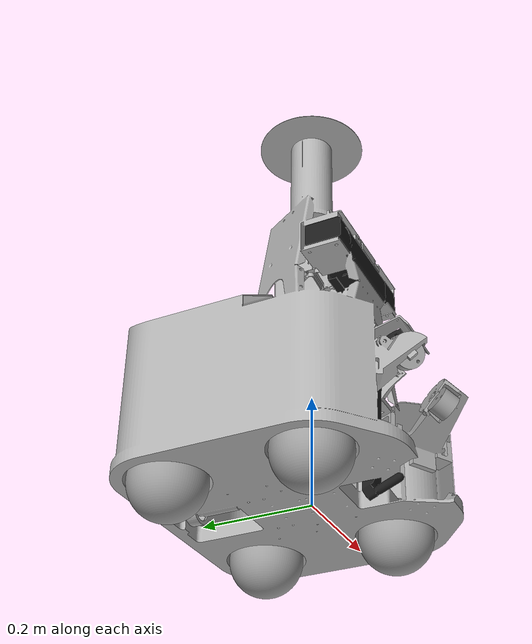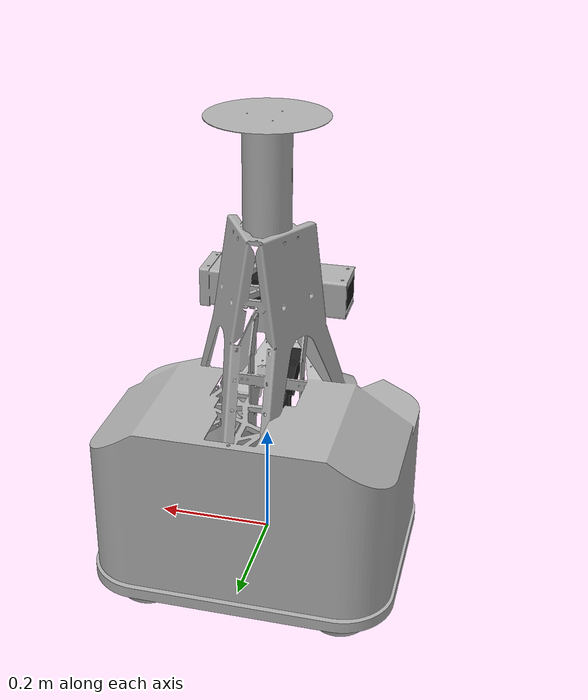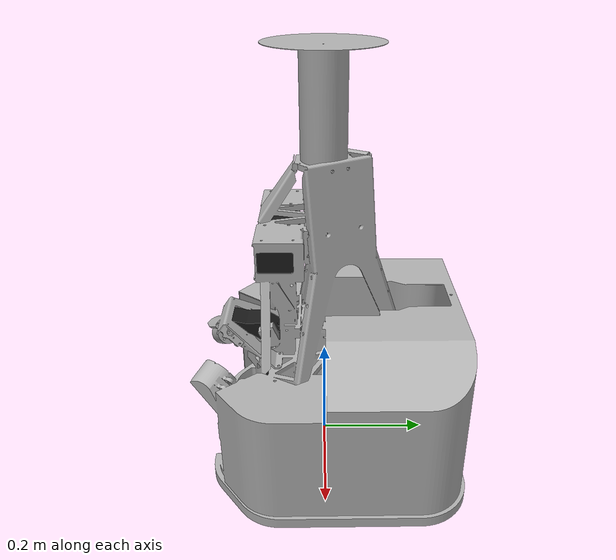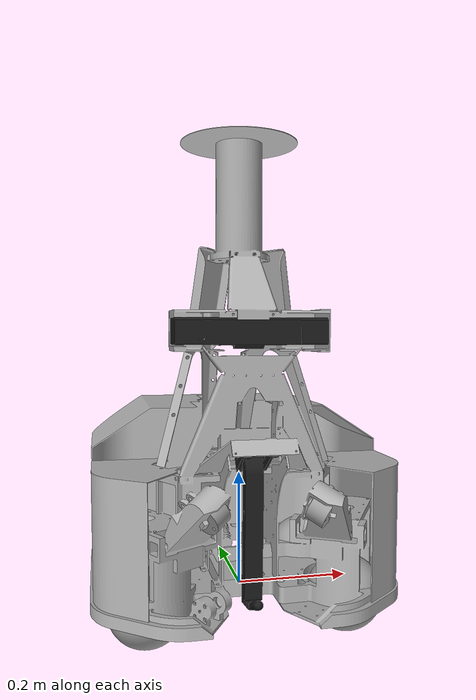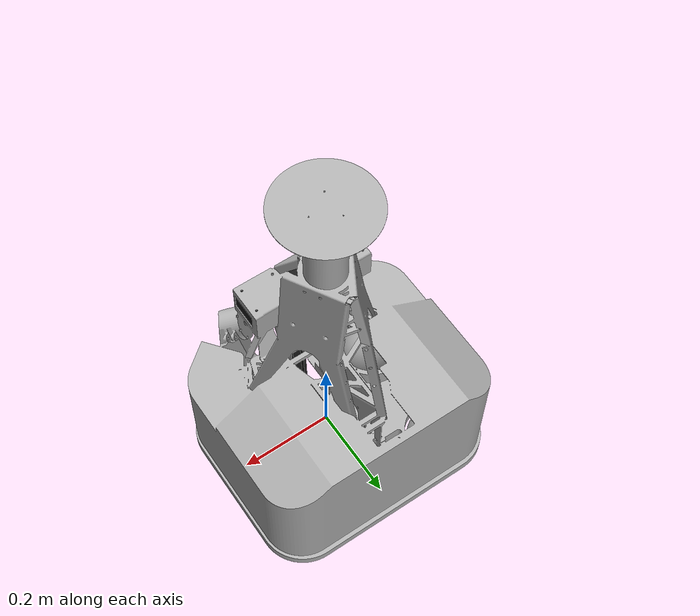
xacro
<?xml version="1.0" ?>
<robot name="rcup_urdf_sph" xmlns:xacro="http://www.ros.org/wiki/xacro">

<xacro:include filename="$(find rcup_urdf_sph_description)/urdf/materials.xacro" />
<xacro:include filename="$(find rcup_urdf_sph_description)/urdf/rcup_urdf_sph.trans" />
<link name="base_link">
  <inertial>
    <origin xyz="-0.0019404383294111213 0.010953637895530069 0.15773361972906869" rpy="0 0 0"/>
    <mass value="38.737058812916764"/>
    <inertia ixx="1.973285" iyy="2.130912" izz="1.568855" ixy="-0.008577" iyz="0.075018" ixz="-0.007662"/>
  </inertial>
  <visual>
    <origin xyz="0 0 0" rpy="0 0 0"/>
    <geometry>
      <mesh filename="package://rcup_urdf_sph_description/meshes/base_link.stl" scale="0.001 0.001 0.001"/>
    </geometry>
    <material name="silver_default"/>
  </visual>
  <collision>
    <origin xyz="0 0 0" rpy="0 0 0"/>
    <geometry>
      <mesh filename="package://rcup_urdf_sph_description/meshes/base_link.stl" scale="0.001 0.001 0.001"/>
    </geometry>
  </collision>
</link>

<link name="Component419_1">
  <inertial>
    <origin xyz="-0.010694649902391953 0.00803962610329817 0.006781847703606597" rpy="0 0 0"/>
    <mass value="0.4122786652131398"/>
    <inertia ixx="0.000106" iyy="9.9e-05" izz="9.6e-05" ixy="-1e-05" iyz="8e-06" ixz="-9e-06"/>
  </inertial>
  <visual>
    <origin xyz="-0.095008 0.214003 -0.17631" rpy="0 0 0"/>
    <geometry>
      <mesh filename="package://rcup_urdf_sph_description/meshes/Component419_1.stl" scale="0.001 0.001 0.001"/>
    </geometry>
    <material name="steel_satin"/>
  </visual>
  <collision>
    <origin xyz="-0.095008 0.214003 -0.17631" rpy="0 0 0"/>
    <geometry>
      <mesh filename="package://rcup_urdf_sph_description/meshes/Component419_1.stl" scale="0.001 0.001 0.001"/>
    </geometry>
  </collision>
</link>

<link name="small_roller_v1_1">
  <inertial>
    <origin xyz="0.01070386879259716 0.008003421622574586 0.006810021314246767" rpy="0 0 0"/>
    <mass value="0.41227866521313966"/>
    <inertia ixx="0.000106" iyy="9.9e-05" izz="9.6e-05" ixy="1.1e-05" iyz="8e-06" ixz="9e-06"/>
  </inertial>
  <visual>
    <origin xyz="0.095008 0.214003 -0.17631" rpy="0 0 0"/>
    <geometry>
      <mesh filename="package://rcup_urdf_sph_description/meshes/small_roller_v1_1.stl" scale="0.001 0.001 0.001"/>
    </geometry>
    <material name="steel_satin"/>
  </visual>
  <collision>
    <origin xyz="0.095008 0.214003 -0.17631" rpy="0 0 0"/>
    <geometry>
      <mesh filename="package://rcup_urdf_sph_description/meshes/small_roller_v1_1.stl" scale="0.001 0.001 0.001"/>
    </geometry>
  </collision>
</link>

<link name="ROD2_1.PRT_1_1">
  <inertial>
    <origin xyz="-0.025188832166870404 -0.013717609182182885 -0.08108173194304436" rpy="0 0 0"/>
    <mass value="0.8809905481847384"/>
    <inertia ixx="0.009181" iyy="0.008966" izz="0.000535" ixy="5e-06" iyz="0.000274" ixz="1.1e-05"/>
  </inertial>
  <visual>
    <origin xyz="-0.025 0.100117 -0.245868" rpy="0 0 0"/>
    <geometry>
      <mesh filename="package://rcup_urdf_sph_description/meshes/ROD2_1.PRT_1_1.stl" scale="0.001 0.001 0.001"/>
    </geometry>
    <material name="opaque272727"/>
  </visual>
  <collision>
    <origin xyz="-0.025 0.100117 -0.245868" rpy="0 0 0"/>
    <geometry>
      <mesh filename="package://rcup_urdf_sph_description/meshes/ROD2_1.PRT_1_1.stl" scale="0.001 0.001 0.001"/>
    </geometry>
  </collision>
</link>

<link name="kinect_1">
  <inertial>
    <origin xyz="8.07978825644895e-05 0.03307821422428597 -0.01854148491227281" rpy="0 0 0"/>
    <mass value="5.665239174580644"/>
    <inertia ixx="0.002961" iyy="0.029846" izz="0.031012" ixy="1.5e-05" iyz="-0.0" ixz="0.0"/>
  </inertial>
  <visual>
    <origin xyz="0.0 0.11115 -0.467009" rpy="0 0 0"/>
    <geometry>
      <mesh filename="package://rcup_urdf_sph_description/meshes/kinect_1.stl" scale="0.001 0.001 0.001"/>
    </geometry>
    <material name="opaque272727"/>
  </visual>
  <collision>
    <origin xyz="0.0 0.11115 -0.467009" rpy="0 0 0"/>
    <geometry>
      <mesh filename="package://rcup_urdf_sph_description/meshes/kinect_1.stl" scale="0.001 0.001 0.001"/>
    </geometry>
  </collision>
</link>

<link name="front_left_1">
  <inertial>
    <origin xyz="-1.0547118733938987e-15 4.29820168609818e-07 -4.163336339193311e-19" rpy="0 0 0"/>
    <mass value="9.03022010341728"/>
    <inertia ixx="0.015261" iyy="0.015261" izz="0.015261" ixy="0.0" iyz="0.0" ixz="-0.0"/>
  </inertial>
  <visual>
    <origin xyz="-0.17 0.078381 -0.0" rpy="0 0 0"/>
    <geometry>
      <mesh filename="package://rcup_urdf_sph_description/meshes/front_left_1.stl" scale="0.001 0.001 0.001"/>
    </geometry>
    <material name="steel_satin"/>
  </visual>
  <collision>
    <origin xyz="-0.17 0.078381 -0.0" rpy="0 0 0"/>
    <geometry>
      <mesh filename="package://rcup_urdf_sph_description/meshes/front_left_1.stl" scale="0.001 0.001 0.001"/>
    </geometry>
  </collision>
</link>

<link name="front_right_1">
  <inertial>
    <origin xyz="0.0 4.2982016797143974e-07 0.0" rpy="0 0 0"/>
    <mass value="9.03022010341728"/>
    <inertia ixx="0.015261" iyy="0.015261" izz="0.015261" ixy="-0.0" iyz="-0.0" ixz="0.0"/>
  </inertial>
  <visual>
    <origin xyz="0.17 0.078381 -0.0" rpy="0 0 0"/>
    <geometry>
      <mesh filename="package://rcup_urdf_sph_description/meshes/front_right_1.stl" scale="0.001 0.001 0.001"/>
    </geometry>
    <material name="steel_satin"/>
  </visual>
  <collision>
    <origin xyz="0.17 0.078381 -0.0" rpy="0 0 0"/>
    <geometry>
      <mesh filename="package://rcup_urdf_sph_description/meshes/front_right_1.stl" scale="0.001 0.001 0.001"/>
    </geometry>
  </collision>
</link>

<link name="rear_left_1">
  <inertial>
    <origin xyz="1.1657341758564144e-15 4.2982016820736213e-07 0.0" rpy="0 0 0"/>
    <mass value="9.03022010341728"/>
    <inertia ixx="0.015261" iyy="0.015261" izz="0.015261" ixy="0.0" iyz="-0.0" ixz="0.0"/>
  </inertial>
  <visual>
    <origin xyz="-0.17 -0.167619 -0.0" rpy="0 0 0"/>
    <geometry>
      <mesh filename="package://rcup_urdf_sph_description/meshes/rear_left_1.stl" scale="0.001 0.001 0.001"/>
    </geometry>
    <material name="steel_satin"/>
  </visual>
  <collision>
    <origin xyz="-0.17 -0.167619 -0.0" rpy="0 0 0"/>
    <geometry>
      <mesh filename="package://rcup_urdf_sph_description/meshes/rear_left_1.stl" scale="0.001 0.001 0.001"/>
    </geometry>
  </collision>
</link>

<link name="rear_right_1">
  <inertial>
    <origin xyz="-5.551115123125783e-17 4.2982016820736213e-07 0.0" rpy="0 0 0"/>
    <mass value="9.03022010341728"/>
    <inertia ixx="0.015261" iyy="0.015261" izz="0.015261" ixy="-0.0" iyz="-0.0" ixz="0.0"/>
  </inertial>
  <visual>
    <origin xyz="0.17 -0.167619 -0.0" rpy="0 0 0"/>
    <geometry>
      <mesh filename="package://rcup_urdf_sph_description/meshes/rear_right_1.stl" scale="0.001 0.001 0.001"/>
    </geometry>
    <material name="steel_satin"/>
  </visual>
  <collision>
    <origin xyz="0.17 -0.167619 -0.0" rpy="0 0 0"/>
    <geometry>
      <mesh filename="package://rcup_urdf_sph_description/meshes/rear_right_1.stl" scale="0.001 0.001 0.001"/>
    </geometry>
  </collision>
</link>

<joint name="Revolute 5" type="continuous">
  <origin xyz="0.095008 -0.214003 0.17631" rpy="0 0 0"/>
  <parent link="base_link"/>
  <child link="Component419_1"/>
  <axis xyz="0.713077 -0.534564 -0.453611"/>
</joint>

<joint name="Revolute 6" type="continuous">
  <origin xyz="-0.095008 -0.214003 0.17631" rpy="0 0 0"/>
  <parent link="base_link"/>
  <child link="small_roller_v1_1"/>
  <axis xyz="-0.713077 -0.534564 -0.453611"/>
</joint>

<joint name="Revolute 7" type="continuous">
  <origin xyz="0.025 -0.100117 0.245868" rpy="0 0 0"/>
  <parent link="base_link"/>
  <child link="ROD2_1.PRT_1_1"/>
  <axis xyz="1.0 -0.0 0.0"/>
</joint>

<joint name="Rigid 11" type="fixed">
  <origin xyz="0.0 -0.11115 0.467009" rpy="0 0 0"/>
  <parent link="base_link"/>
  <child link="kinect_1"/>
</joint>

<joint name="Revolute 12" type="continuous">
  <origin xyz="0.17 -0.078381 0.0" rpy="0 0 0"/>
  <parent link="base_link"/>
  <child link="front_left_1"/>
  <axis xyz="1.0 -0.0 0.0"/>
</joint>

<joint name="Revolute 13" type="continuous">
  <origin xyz="-0.17 -0.078381 0.0" rpy="0 0 0"/>
  <parent link="base_link"/>
  <child link="front_right_1"/>
  <axis xyz="-1.0 0.0 -0.0"/>
</joint>

<joint name="Revolute 14" type="continuous">
  <origin xyz="0.17 0.167619 0.0" rpy="0 0 0"/>
  <parent link="base_link"/>
  <child link="rear_left_1"/>
  <axis xyz="1.0 -0.0 0.0"/>
</joint>

<joint name="Revolute 15" type="continuous">
  <origin xyz="-0.17 0.167619 0.0" rpy="0 0 0"/>
  <parent link="base_link"/>
  <child link="rear_right_1"/>
  <axis xyz="-1.0 0.0 -0.0"/>
</joint>

</robot>

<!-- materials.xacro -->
<robot name="rcup_urdf_sph" xmlns:xacro="http://www.ros.org/wiki/xacro" >

<material name="silver_default">
  <color rgba="0.700 0.700 0.700 1.000"/>
</material>
<material name="steel_satin">
  <color rgba="0.6274509803921569 0.6274509803921569 0.6274509803921569 1.0"/>
</material>
<material name="opaque272727">
  <color rgba="0.10588235294117647 0.10588235294117647 0.10588235294117647 1.0"/>
</material>

</robot>
